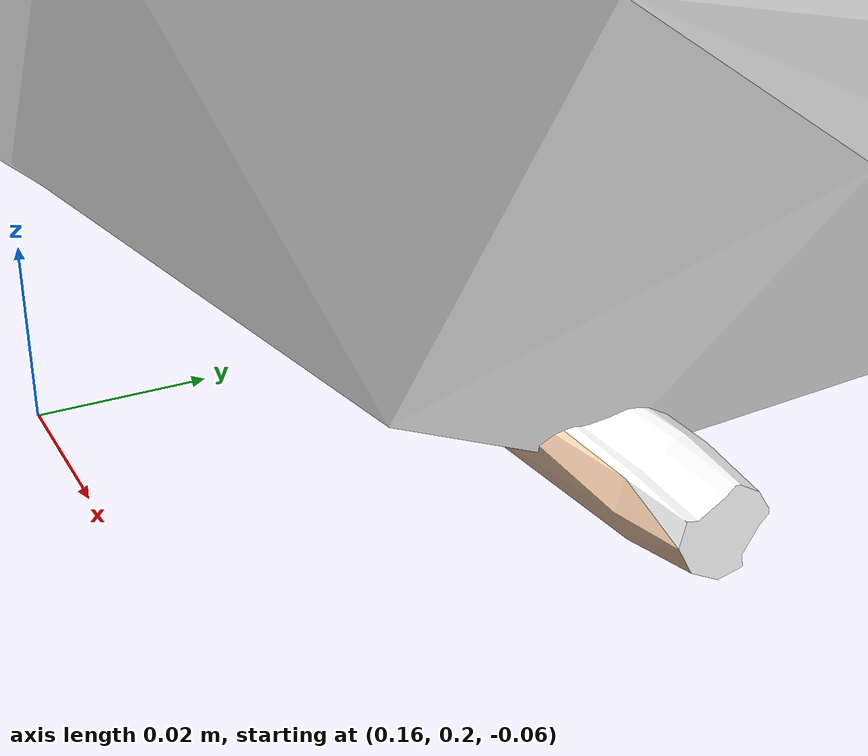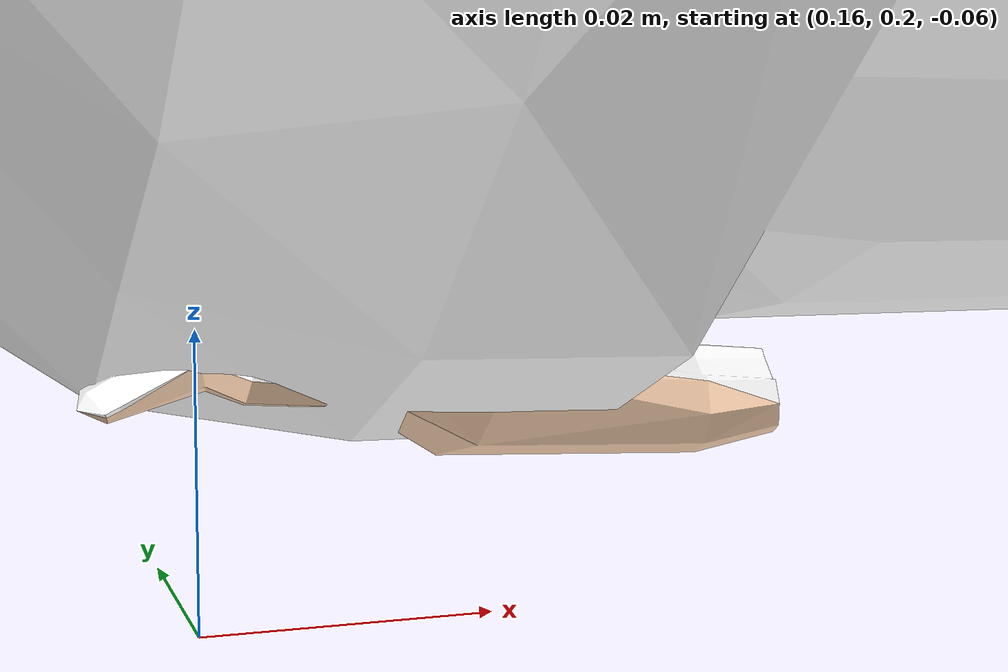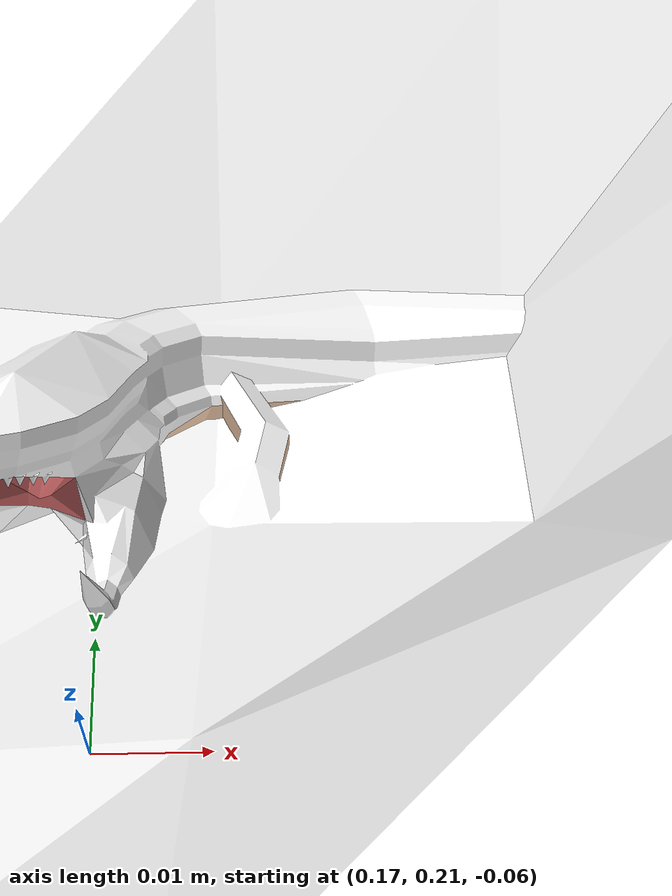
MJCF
<mujoco model="dune_towel">
  <asset>
  <texture file="visual/ceramic.png" name="tex-dune_towel" type="2d" />
  <material name="dune_towel" reflectance="0.5" texrepeat="1 1" texture="tex-dune_towel" texuniform="false" />
  <mesh file="visual/model_normalized_0.obj" name="model_normalized_0_vis" scale="1.0 1.0 1.0" /><mesh file="visual/model_normalized_1.obj" name="model_normalized_1_vis" scale="1.0 1.0 1.0" /><mesh file="visual/model_normalized_2.obj" name="model_normalized_2_vis" scale="1.0 1.0 1.0" /><mesh file="collision/model_normalized_collision_22.obj" name="model_normalized_collision_22._coll" scale="1.0 1.0 1.0" /><mesh file="collision/model_normalized_collision_4.obj" name="model_normalized_collision_4._coll" scale="1.0 1.0 1.0" /><mesh file="collision/model_normalized_collision_27.obj" name="model_normalized_collision_27._coll" scale="1.0 1.0 1.0" /><mesh file="collision/model_normalized_collision_6.obj" name="model_normalized_collision_6._coll" scale="1.0 1.0 1.0" /><mesh file="collision/model_normalized_collision_25.obj" name="model_normalized_collision_25._coll" scale="1.0 1.0 1.0" /><mesh file="collision/model_normalized_collision_26.obj" name="model_normalized_collision_26._coll" scale="1.0 1.0 1.0" /><mesh file="collision/model_normalized_collision_29.obj" name="model_normalized_collision_29._coll" scale="1.0 1.0 1.0" /><mesh file="collision/model_normalized_collision_19.obj" name="model_normalized_collision_19._coll" scale="1.0 1.0 1.0" /><mesh file="collision/model_normalized_collision_12.obj" name="model_normalized_collision_12._coll" scale="1.0 1.0 1.0" /><mesh file="collision/model_normalized_collision_17.obj" name="model_normalized_collision_17._coll" scale="1.0 1.0 1.0" /><mesh file="collision/model_normalized_collision_20.obj" name="model_normalized_collision_20._coll" scale="1.0 1.0 1.0" /><mesh file="collision/model_normalized_collision_14.obj" name="model_normalized_collision_14._coll" scale="1.0 1.0 1.0" /><mesh file="collision/model_normalized_collision_18.obj" name="model_normalized_collision_18._coll" scale="1.0 1.0 1.0" /><mesh file="collision/model_normalized_collision_15.obj" name="model_normalized_collision_15._coll" scale="1.0 1.0 1.0" /><mesh file="collision/model_normalized_collision_30.obj" name="model_normalized_collision_30._coll" scale="1.0 1.0 1.0" /><mesh file="collision/model_normalized_collision_31.obj" name="model_normalized_collision_31._coll" scale="1.0 1.0 1.0" /><mesh file="collision/model_normalized_collision_23.obj" name="model_normalized_collision_23._coll" scale="1.0 1.0 1.0" /><mesh file="collision/model_normalized_collision_28.obj" name="model_normalized_collision_28._coll" scale="1.0 1.0 1.0" /><mesh file="collision/model_normalized_collision_13.obj" name="model_normalized_collision_13._coll" scale="1.0 1.0 1.0" /><mesh file="collision/model_normalized_collision_5.obj" name="model_normalized_collision_5._coll" scale="1.0 1.0 1.0" /><mesh file="collision/model_normalized_collision_24.obj" name="model_normalized_collision_24._coll" scale="1.0 1.0 1.0" /><mesh file="collision/model_normalized_collision_16.obj" name="model_normalized_collision_16._coll" scale="1.0 1.0 1.0" /><mesh file="collision/model_normalized_collision_11.obj" name="model_normalized_collision_11._coll" scale="1.0 1.0 1.0" /><mesh file="collision/model_normalized_collision_1.obj" name="model_normalized_collision_1._coll" scale="1.0 1.0 1.0" /><mesh file="collision/model_normalized_collision_10.obj" name="model_normalized_collision_10._coll" scale="1.0 1.0 1.0" /><mesh file="collision/model_normalized_collision_21.obj" name="model_normalized_collision_21._coll" scale="1.0 1.0 1.0" /><mesh file="collision/model_normalized_collision_8.obj" name="model_normalized_collision_8._coll" scale="1.0 1.0 1.0" /><mesh file="collision/model_normalized_collision_7.obj" name="model_normalized_collision_7._coll" scale="1.0 1.0 1.0" /><mesh file="collision/model_normalized_collision_3.obj" name="model_normalized_collision_3._coll" scale="1.0 1.0 1.0" /><mesh file="collision/model_normalized_collision_2.obj" name="model_normalized_collision_2._coll" scale="1.0 1.0 1.0" /><mesh file="collision/model_normalized_collision_9.obj" name="model_normalized_collision_9._coll" scale="1.0 1.0 1.0" /><mesh file="collision/model_normalized_collision_0.obj" name="model_normalized_collision_0._coll" scale="1.0 1.0 1.0" /><material name="material_0" specular="0.4000000000000001" shininess="0.001" rgba="1.00000000 1.00000000 1.00000000 1.0" /><material name="material_1" specular="0.4000000000000001" shininess="0.001" rgba="1.00000000 0.83921569 0.70196078 1.0" /><material name="material_2" specular="0.4000000000000001" shininess="0.001" rgba="0.65882353 0.31372549 0.31372549 1.0" /></asset>
  <worldbody>
    <body>
      <body name="object" euler="-90 0 0">

        <geom solimp="0.998 0.998 0.001" solref="0.001 1" density="100" friction="0.95 0.3 0.1" type="mesh" mesh="model_normalized_0_vis" conaffinity="0" contype="0" group="1" material="material_2" />
        <geom solimp="0.998 0.998 0.001" solref="0.001 1" density="100" friction="0.95 0.3 0.1" type="mesh" mesh="model_normalized_1_vis" conaffinity="0" contype="0" group="1" material="material_1" />
        <geom solimp="0.998 0.998 0.001" solref="0.001 1" density="100" friction="0.95 0.3 0.1" type="mesh" mesh="model_normalized_2_vis" conaffinity="0" contype="0" group="1" material="material_0" />

        <geom solimp="0.998 0.998 0.001" solref="0.001 1" density="100" friction="0.95 0.3 0.1" type="mesh" mesh="model_normalized_collision_22._coll" group="0" rgba="0.8 0.8 0.8 0.0" /><geom solimp="0.998 0.998 0.001" solref="0.001 1" density="100" friction="0.95 0.3 0.1" type="mesh" mesh="model_normalized_collision_4._coll" group="0" rgba="0.8 0.8 0.8 0.0" /><geom solimp="0.998 0.998 0.001" solref="0.001 1" density="100" friction="0.95 0.3 0.1" type="mesh" mesh="model_normalized_collision_27._coll" group="0" rgba="0.8 0.8 0.8 0.0" /><geom solimp="0.998 0.998 0.001" solref="0.001 1" density="100" friction="0.95 0.3 0.1" type="mesh" mesh="model_normalized_collision_6._coll" group="0" rgba="0.8 0.8 0.8 0.0" /><geom solimp="0.998 0.998 0.001" solref="0.001 1" density="100" friction="0.95 0.3 0.1" type="mesh" mesh="model_normalized_collision_25._coll" group="0" rgba="0.8 0.8 0.8 0.0" /><geom solimp="0.998 0.998 0.001" solref="0.001 1" density="100" friction="0.95 0.3 0.1" type="mesh" mesh="model_normalized_collision_26._coll" group="0" rgba="0.8 0.8 0.8 0.0" /><geom solimp="0.998 0.998 0.001" solref="0.001 1" density="100" friction="0.95 0.3 0.1" type="mesh" mesh="model_normalized_collision_29._coll" group="0" rgba="0.8 0.8 0.8 0.0" /><geom solimp="0.998 0.998 0.001" solref="0.001 1" density="100" friction="0.95 0.3 0.1" type="mesh" mesh="model_normalized_collision_19._coll" group="0" rgba="0.8 0.8 0.8 0.0" /><geom solimp="0.998 0.998 0.001" solref="0.001 1" density="100" friction="0.95 0.3 0.1" type="mesh" mesh="model_normalized_collision_12._coll" group="0" rgba="0.8 0.8 0.8 0.0" /><geom solimp="0.998 0.998 0.001" solref="0.001 1" density="100" friction="0.95 0.3 0.1" type="mesh" mesh="model_normalized_collision_17._coll" group="0" rgba="0.8 0.8 0.8 0.0" /><geom solimp="0.998 0.998 0.001" solref="0.001 1" density="100" friction="0.95 0.3 0.1" type="mesh" mesh="model_normalized_collision_20._coll" group="0" rgba="0.8 0.8 0.8 0.0" /><geom solimp="0.998 0.998 0.001" solref="0.001 1" density="100" friction="0.95 0.3 0.1" type="mesh" mesh="model_normalized_collision_14._coll" group="0" rgba="0.8 0.8 0.8 0.0" /><geom solimp="0.998 0.998 0.001" solref="0.001 1" density="100" friction="0.95 0.3 0.1" type="mesh" mesh="model_normalized_collision_18._coll" group="0" rgba="0.8 0.8 0.8 0.0" /><geom solimp="0.998 0.998 0.001" solref="0.001 1" density="100" friction="0.95 0.3 0.1" type="mesh" mesh="model_normalized_collision_15._coll" group="0" rgba="0.8 0.8 0.8 0.0" /><geom solimp="0.998 0.998 0.001" solref="0.001 1" density="100" friction="0.95 0.3 0.1" type="mesh" mesh="model_normalized_collision_30._coll" group="0" rgba="0.8 0.8 0.8 0.0" /><geom solimp="0.998 0.998 0.001" solref="0.001 1" density="100" friction="0.95 0.3 0.1" type="mesh" mesh="model_normalized_collision_31._coll" group="0" rgba="0.8 0.8 0.8 0.0" /><geom solimp="0.998 0.998 0.001" solref="0.001 1" density="100" friction="0.95 0.3 0.1" type="mesh" mesh="model_normalized_collision_23._coll" group="0" rgba="0.8 0.8 0.8 0.0" /><geom solimp="0.998 0.998 0.001" solref="0.001 1" density="100" friction="0.95 0.3 0.1" type="mesh" mesh="model_normalized_collision_28._coll" group="0" rgba="0.8 0.8 0.8 0.0" /><geom solimp="0.998 0.998 0.001" solref="0.001 1" density="100" friction="0.95 0.3 0.1" type="mesh" mesh="model_normalized_collision_13._coll" group="0" rgba="0.8 0.8 0.8 0.0" /><geom solimp="0.998 0.998 0.001" solref="0.001 1" density="100" friction="0.95 0.3 0.1" type="mesh" mesh="model_normalized_collision_5._coll" group="0" rgba="0.8 0.8 0.8 0.0" /><geom solimp="0.998 0.998 0.001" solref="0.001 1" density="100" friction="0.95 0.3 0.1" type="mesh" mesh="model_normalized_collision_24._coll" group="0" rgba="0.8 0.8 0.8 0.0" /><geom solimp="0.998 0.998 0.001" solref="0.001 1" density="100" friction="0.95 0.3 0.1" type="mesh" mesh="model_normalized_collision_16._coll" group="0" rgba="0.8 0.8 0.8 0.0" /><geom solimp="0.998 0.998 0.001" solref="0.001 1" density="100" friction="0.95 0.3 0.1" type="mesh" mesh="model_normalized_collision_11._coll" group="0" rgba="0.8 0.8 0.8 0.0" /><geom solimp="0.998 0.998 0.001" solref="0.001 1" density="100" friction="0.95 0.3 0.1" type="mesh" mesh="model_normalized_collision_1._coll" group="0" rgba="0.8 0.8 0.8 0.0" /><geom solimp="0.998 0.998 0.001" solref="0.001 1" density="100" friction="0.95 0.3 0.1" type="mesh" mesh="model_normalized_collision_10._coll" group="0" rgba="0.8 0.8 0.8 0.0" /><geom solimp="0.998 0.998 0.001" solref="0.001 1" density="100" friction="0.95 0.3 0.1" type="mesh" mesh="model_normalized_collision_21._coll" group="0" rgba="0.8 0.8 0.8 0.0" /><geom solimp="0.998 0.998 0.001" solref="0.001 1" density="100" friction="0.95 0.3 0.1" type="mesh" mesh="model_normalized_collision_8._coll" group="0" rgba="0.8 0.8 0.8 0.0" /><geom solimp="0.998 0.998 0.001" solref="0.001 1" density="100" friction="0.95 0.3 0.1" type="mesh" mesh="model_normalized_collision_7._coll" group="0" rgba="0.8 0.8 0.8 0.0" /><geom solimp="0.998 0.998 0.001" solref="0.001 1" density="100" friction="0.95 0.3 0.1" type="mesh" mesh="model_normalized_collision_3._coll" group="0" rgba="0.8 0.8 0.8 0.0" /><geom solimp="0.998 0.998 0.001" solref="0.001 1" density="100" friction="0.95 0.3 0.1" type="mesh" mesh="model_normalized_collision_2._coll" group="0" rgba="0.8 0.8 0.8 0.0" /><geom solimp="0.998 0.998 0.001" solref="0.001 1" density="100" friction="0.95 0.3 0.1" type="mesh" mesh="model_normalized_collision_9._coll" group="0" rgba="0.8 0.8 0.8 0.0" /><geom solimp="0.998 0.998 0.001" solref="0.001 1" density="100" friction="0.95 0.3 0.1" type="mesh" mesh="model_normalized_collision_0._coll" group="0" rgba="0.8 0.8 0.8 0.0" />
      </body>
      <site rgba="0 0 0 0" size="0.005" pos="-2.4832523773166137e-05 -0.0037201727440303034 -0.4922465601892698" name="bottom_site" />
      <site rgba="0 0 0 0" size="0.005" pos="-2.4832523773166137e-05 -0.0037201727440303034 0.49255301211238556" name="top_site" />
      <site rgba="0 0 0 0" size="0.005" pos="0.5075257162778469 0.10991054713693355 0.00015322596155786794" name="horizontal_radius_site" />
    </body>
  </worldbody>
</mujoco>
